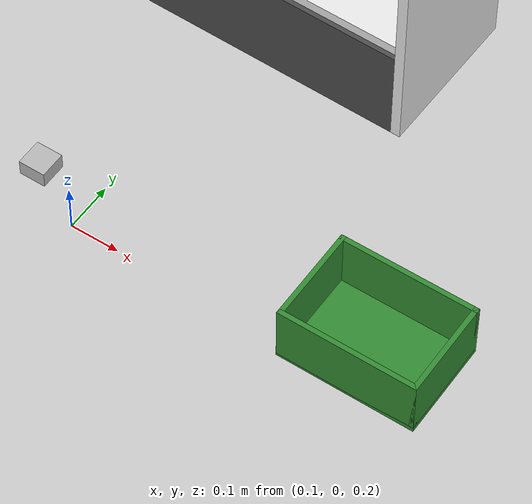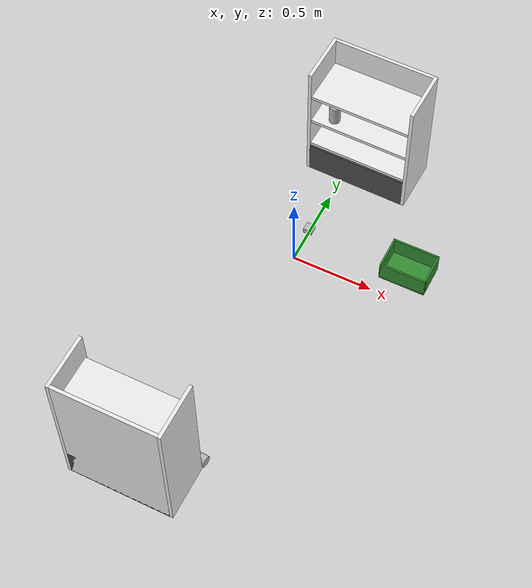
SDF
<sdf version="1.7">
 <world name="default">
  <plugin name="ros_link_attacher_plugin" filename="libgazebo_ros_link_attacher.so"/>
  <physics type="ode">
   <max_step_size>0.001</max_step_size>
   <real_time_factor>1</real_time_factor>
   <real_time_update_rate>1000</real_time_update_rate>
  </physics>
  <gravity>0 0 -9.8</gravity>
  <light name="sun" type="directional">
   <pose>0 0 10 0 -0 0</pose>
   <diffuse>0.8 0.8 0.8 1</diffuse>
   <specular>0.2 0.2 0.2 1</specular>
   <attenuation>
    <range>1000</range>
    <constant>0.9</constant>
    <linear>0.01</linear>
    <quadratic>0.001</quadratic>
   </attenuation>
   <direction>-0.5 0.1 -0.9</direction>
   <spot><inner_angle>0</inner_angle><outer_angle>0</outer_angle><falloff>0</falloff></spot>
  </light>
  <model name="ground_plane">
   <static>1</static>
   <link name="link">
    <collision name="collision">
     <geometry><plane><normal>0 0 1</normal><size>100 100</size></plane></geometry>
     <surface><friction><ode><mu>100</mu><mu2>50</mu2></ode></friction></surface>
    </collision>
    <visual name="visual">
     <cast_shadows>0</cast_shadows>
     <geometry><plane><normal>0 0 1</normal><size>100 100</size></plane></geometry>
     <material>
      <script><uri>file://media/materials/scripts/gazebo.material</uri><name>Gazebo/Grey</name></script>
     </material>
    </visual>
   </link>
  </model>
  <model name="depth_camera_model">
   <static>1</static>
   <pose>0.158364 -0.133043 0.555751 0 -0 1.57188</pose>
   <link name="depth_camera_link">
    <visual name="depth_camera_body"><geometry><box><size>0.05 0.05 0.03</size></box></geometry></visual>
    <sensor name="depth_camera" type="depth">
     <always_on>1</always_on>
     <update_rate>30</update_rate>
     <camera>
      <horizontal_fov>1.047</horizontal_fov>
      <image><width>640</width><height>480</height><format>R8G8B8</format></image>
      <clip><near>0.1</near><far>3</far></clip>
     </camera>
     <visualize>1</visualize>
     <plugin name="camera_controller" filename="libgazebo_ros_openni_kinect.so">
      <cameraName>depth_camera</cameraName>
      <alwaysOn>1</alwaysOn>
      <updateRate>30.0</updateRate>
      <imageTopicName>/camera/color/image_raw</imageTopicName>
      <cameraInfoTopicName>/camera/color/camera_info</cameraInfoTopicName>
      <depthImageTopicName>/camera/depth/image_raw</depthImageTopicName>
      <pointCloudTopicName>/camera/depth/points</pointCloudTopicName>
      <frameName>depth_camera_link</frameName>
     </plugin>
    </sensor>
   </link>
  </model>
  <scene><ambient>0.4 0.4 0.4 1</ambient><background>0.7 0.7 0.7 1</background><shadows>1</shadows></scene>
  <magnetic_field>6e-06 2.3e-05 -4.2e-05</magnetic_field>
  <atmosphere type="adiabatic"/>
  <spherical_coordinates>
   <surface_model>EARTH_WGS84</surface_model>
   <latitude_deg>0</latitude_deg>
   <longitude_deg>0</longitude_deg>
   <elevation>0</elevation>
   <heading_deg>0</heading_deg>
  </spherical_coordinates>
  <model name="narrow_supermarket_shelf_enclosed_1">
   <static>1</static>
   <link name="link">
    <collision name="base_collision">
     <pose>0 0 0.1 0 -0 0</pose>
     <geometry><box><size>0.32 0.6 0.2</size></box></geometry>
    </collision>
    <visual name="base_visual">
     <pose>0 0 0.1 0 -0 0</pose>
     <geometry><box><size>0.32 0.6 0.2</size></box></geometry>
     <material>
      <script><uri>file://media/materials/scripts/gazebo.material</uri><name>Gazebo/DarkGrey</name></script>
     </material>
    </visual>
    <collision name="backboard_collision">
     <pose>0.15 0 0.45 0 -0 0</pose>
     <geometry><box><size>0.02 0.6 0.9</size></box></geometry>
    </collision>
    <visual name="backboard_visual">
     <pose>0.15 0 0.45 0 -0 0</pose>
     <geometry><box><size>0.02 0.6 0.9</size></box></geometry>
     <material>
      <script><uri>file://media/materials/scripts/gazebo.material</uri><name>Gazebo/White</name></script>
     </material>
    </visual>
    <collision name="sidepanel_left_collision">
     <pose>0 0.31 0.45 0 -0 0</pose>
     <geometry><box><size>0.32 0.02 0.9</size></box></geometry>
    </collision>
    <visual name="sidepanel_left_visual">
     <pose>0 0.31 0.45 0 -0 0</pose>
     <geometry><box><size>0.32 0.02 0.9</size></box></geometry>
     <material>
      <script><uri>file://media/materials/scripts/gazebo.material</uri><name>Gazebo/White</name></script>
     </material>
    </visual>
    <collision name="sidepanel_right_collision">
     <pose>0 -0.31 0.45 0 -0 0</pose>
     <geometry><box><size>0.32 0.02 0.9</size></box></geometry>
    </collision>
    <visual name="sidepanel_right_visual">
     <pose>0 -0.31 0.45 0 -0 0</pose>
     <geometry><box><size>0.32 0.02 0.9</size></box></geometry>
     <material>
      <script><uri>file://media/materials/scripts/gazebo.material</uri><name>Gazebo/White</name></script>
     </material>
    </visual>
    <collision name="shelf_bottom_collision">
     <pose>0 0 0.21 0 -0 0</pose>
     <geometry><box><size>0.3 0.6 0.02</size></box></geometry>
    </collision>
    <visual name="shelf_bottom_visual">
     <pose>0 0 0.21 0 -0 0</pose>
     <geometry><box><size>0.3 0.6 0.02</size></box></geometry>
     <material>
      <script><uri>file://media/materials/scripts/gazebo.material</uri><name>Gazebo/White</name></script>
     </material>
    </visual>
    <collision name="shelf_middle_collision">
     <pose>0 0 0.46 0 -0 0</pose>
     <geometry><box><size>0.3 0.6 0.02</size></box></geometry>
    </collision>
    <visual name="shelf_middle_visual">
     <pose>0 0 0.46 0 -0 0</pose>
     <geometry><box><size>0.3 0.6 0.02</size></box></geometry>
     <material>
      <script><uri>file://media/materials/scripts/gazebo.material</uri><name>Gazebo/White</name></script>
     </material>
    </visual>
    <collision name="shelf_top_collision">
     <pose>0 0 0.71 0 -0 0</pose>
     <geometry><box><size>0.3 0.6 0.02</size></box></geometry>
    </collision>
    <visual name="shelf_top_visual">
     <pose>0 0 0.71 0 -0 0</pose>
     <geometry><box><size>0.3 0.6 0.02</size></box></geometry>
     <material>
      <script><uri>file://media/materials/scripts/gazebo.material</uri><name>Gazebo/White</name></script>
     </material>
    </visual>
   </link>
   <pose>-0.144011 -1.61152 0 0 0 -1.56622</pose>
  </model>
  <model name="narrow_supermarket_shelf_enclosed_0">
   <static>1</static>
   <link name="link">
    <collision name="base_collision">
     <pose>0 0 0.1 0 -0 0</pose>
     <geometry><box><size>0.32 0.6 0.2</size></box></geometry>
    </collision>
    <visual name="base_visual">
     <pose>0 0 0.1 0 -0 0</pose>
     <geometry><box><size>0.32 0.6 0.2</size></box></geometry>
     <material>
      <script><uri>file://media/materials/scripts/gazebo.material</uri><name>Gazebo/DarkGrey</name></script>
     </material>
    </visual>
    <collision name="backboard_collision">
     <pose>0.15 0 0.4 0 -0 0</pose>
     <geometry><box><size>0.02 0.6 0.8</size></box></geometry>
    </collision>
    <visual name="backboard_visual">
     <pose>0.15 0 0.4 0 -0 0</pose>
     <geometry><box><size>0.02 0.6 0.8</size></box></geometry>
     <material>
      <script><uri>file://media/materials/scripts/gazebo.material</uri><name>Gazebo/White</name></script>
     </material>
    </visual>
    <collision name="sidepanel_left_collision">
     <pose>0 0.31 0.4 0 -0 0</pose>
     <geometry><box><size>0.32 0.02 0.8</size></box></geometry>
    </collision>
    <visual name="sidepanel_left_visual">
     <pose>0 0.31 0.4 0 -0 0</pose>
     <geometry><box><size>0.32 0.02 0.8</size></box></geometry>
     <material>
      <script><uri>file://media/materials/scripts/gazebo.material</uri><name>Gazebo/White</name></script>
     </material>
    </visual>
    <collision name="sidepanel_right_collision">
     <pose>0 -0.31 0.4 0 -0 0</pose>
     <geometry><box><size>0.32 0.02 0.8</size></box></geometry>
    </collision>
    <visual name="sidepanel_right_visual">
     <pose>0 -0.31 0.4 0 -0 0</pose>
     <geometry><box><size>0.32 0.02 0.8</size></box></geometry>
     <material>
      <script><uri>file://media/materials/scripts/gazebo.material</uri><name>Gazebo/White</name></script>
     </material>
    </visual>
    <collision name="shelf_bottom_collision">
     <pose>0 0 0.21 0 -0 0</pose>
     <geometry><box><size>0.3 0.6 0.02</size></box></geometry>
    </collision>
    <visual name="shelf_bottom_visual">
     <pose>0 0 0.21 0 -0 0</pose>
     <geometry><box><size>0.3 0.6 0.02</size></box></geometry>
     <material>
      <script><uri>file://media/materials/scripts/gazebo.material</uri><name>Gazebo/White</name></script>
     </material>
    </visual>
    <collision name="shelf_middle_collision">
     <pose>0 0 0.41 0 -0 0</pose>
     <geometry><box><size>0.3 0.6 0.02</size></box></geometry>
    </collision>
    <visual name="shelf_middle_visual">
     <pose>0 0 0.41 0 -0 0</pose>
     <geometry><box><size>0.3 0.6 0.02</size></box></geometry>
     <material>
      <script><uri>file://media/materials/scripts/gazebo.material</uri><name>Gazebo/White</name></script>
     </material>
    </visual>
    <collision name="shelf_top_collision">
     <pose>0 0 0.61 0 -0 0</pose>
     <geometry><box><size>0.3 0.6 0.02</size></box></geometry>
    </collision>
    <visual name="shelf_top_visual">
     <pose>0 0 0.61 0 -0 0</pose>
     <geometry><box><size>0.3 0.6 0.02</size></box></geometry>
     <material>
      <script><uri>file://media/materials/scripts/gazebo.material</uri><name>Gazebo/White</name></script>
     </material>
    </visual>
   </link>
   <pose>0.154556 0.660653 0.205537 0 -0 1.54937</pose>
  </model>
  <model name="beer">
   <link name="link">
    <pose>0 0 0.0615 0 -0 0</pose>
    <inertial>
     <mass>0.35</mass>
     <inertia>
      <ixx>0.000536</ixx>
      <ixy>0</ixy>
      <ixz>0</ixz>
      <iyy>0.000536</iyy>
      <iyz>0</iyz>
      <izz>0.00019</izz>
     </inertia>
    </inertial>
    <collision name="collision">
     <geometry><cylinder><radius>0.033</radius><length>0.123</length></cylinder></geometry>
     <surface>
      <friction><ode><mu>100</mu><mu2>100</mu2><fdir1>0 0 0</fdir1><slip1>0</slip1><slip2>0</slip2></ode></friction>
      <contact><ode><kp>1e+06</kp><kd>1</kd><min_depth>0.001</min_depth><max_vel>0.1</max_vel></ode></contact>
     </surface>
    </collision>
    <visual name="visual">
     <geometry><cylinder><radius>0.033</radius><length>0.123</length></cylinder></geometry>
     <material>
      <script>
       <uri>model://Beer/materials/scripts</uri>
       <uri>model://Beer/materials/textures</uri>
       <name>Beer/Diffuse</name>
      </script>
     </material>
    </visual>
   </link>
   <pose>-312.598 2621.93 0.031998 1.5708 -0.251336 -1.44921</pose>
  </model>
  <model name="beer_1">
   <link name="link">
    <pose>0 0 0.0615 0 -0 0</pose>
    <inertial>
     <mass>0.35</mass>
     <inertia>
      <ixx>0.000536</ixx>
      <ixy>0</ixy>
      <ixz>0</ixz>
      <iyy>0.000536</iyy>
      <iyz>0</iyz>
      <izz>0.00019</izz>
     </inertia>
    </inertial>
    <collision name="collision">
     <geometry><cylinder><radius>0.033</radius><length>0.123</length></cylinder></geometry>
     <surface>
      <friction><ode><mu>100</mu><mu2>100</mu2><fdir1>0 0 0</fdir1><slip1>0</slip1><slip2>0</slip2></ode></friction>
      <contact><ode><kp>1e+06</kp><kd>1</kd><min_depth>0.001</min_depth><max_vel>0.1</max_vel></ode></contact>
     </surface>
    </collision>
    <visual name="visual">
     <geometry><cylinder><radius>0.033</radius><length>0.123</length></cylinder></geometry>
     <material>
      <script>
       <uri>model://Beer/materials/scripts</uri>
       <uri>model://Beer/materials/textures</uri>
       <name>Beer/Diffuse</name>
      </script>
     </material>
    </visual>
   </link>
   <pose>-1421.93 1027.9 0.031998 1.5708 1.09396 2.52451</pose>
  </model>
  <model name="beer_5">
   <link name="link">
    <pose>0 0 0.0615 0 -0 0</pose>
    <inertial>
     <mass>0.35</mass>
     <inertia>
      <ixx>0.000536</ixx>
      <ixy>0</ixy>
      <ixz>0</ixz>
      <iyy>0.000536</iyy>
      <iyz>0</iyz>
      <izz>0.00019</izz>
     </inertia>
    </inertial>
    <collision name="collision">
     <geometry><cylinder><radius>0.033</radius><length>0.123</length></cylinder></geometry>
     <surface>
      <friction><ode><mu>100</mu><mu2>100</mu2><fdir1>0 0 0</fdir1><slip1>0</slip1><slip2>0</slip2></ode></friction>
      <contact><ode><kp>1e+06</kp><kd>1</kd><min_depth>0.001</min_depth><max_vel>0.1</max_vel></ode></contact>
     </surface>
    </collision>
    <visual name="visual">
     <geometry><cylinder><radius>0.033</radius><length>0.123</length></cylinder></geometry>
     <material>
      <script>
       <uri>model://Beer/materials/scripts</uri>
       <uri>model://Beer/materials/textures</uri>
       <name>Beer/Diffuse</name>
      </script>
     </material>
    </visual>
   </link>
   <pose>-1605.53 -792.721 0.031998 -1.5708 -0.821368 -2.70363</pose>
  </model>
  <model name="beer_6">
   <link name="link">
    <pose>0 0 0.0615 0 -0 0</pose>
    <inertial>
     <mass>0.35</mass>
     <inertia>
      <ixx>0.000536</ixx>
      <ixy>0</ixy>
      <ixz>0</ixz>
      <iyy>0.000536</iyy>
      <iyz>0</iyz>
      <izz>0.00019</izz>
     </inertia>
    </inertial>
    <collision name="collision">
     <geometry><cylinder><radius>0.033</radius><length>0.123</length></cylinder></geometry>
     <surface>
      <friction><ode><mu>100</mu><mu2>100</mu2><fdir1>0 0 0</fdir1><slip1>0</slip1><slip2>0</slip2></ode></friction>
      <contact><ode><kp>1e+06</kp><kd>1</kd><min_depth>0.001</min_depth><max_vel>0.1</max_vel></ode></contact>
     </surface>
    </collision>
    <visual name="visual">
     <geometry><cylinder><radius>0.033</radius><length>0.123</length></cylinder></geometry>
     <material>
      <script>
       <uri>model://Beer/materials/scripts</uri>
       <uri>model://Beer/materials/textures</uri>
       <name>Beer/Diffuse</name>
      </script>
     </material>
    </visual>
   </link>
   <pose>0.185885 -1.41762 0.031998 -1.5708 1.51802 1.51465</pose>
  </model>
  <model name="beer_7">
   <link name="link">
    <pose>0 0 0.0615 0 -0 0</pose>
    <inertial>
     <mass>0.35</mass>
     <inertia>
      <ixx>0.000536</ixx>
      <ixy>0</ixy>
      <ixz>0</ixz>
      <iyy>0.000536</iyy>
      <iyz>0</iyz>
      <izz>0.00019</izz>
     </inertia>
    </inertial>
    <collision name="collision">
     <geometry><cylinder><radius>0.033</radius><length>0.123</length></cylinder></geometry>
     <surface>
      <friction><ode><mu>100</mu><mu2>100</mu2><fdir1>0 0 0</fdir1><slip1>0</slip1><slip2>0</slip2></ode></friction>
      <contact><ode><kp>1e+06</kp><kd>1</kd><min_depth>0.001</min_depth><max_vel>0.1</max_vel></ode></contact>
     </surface>
    </collision>
    <visual name="visual">
     <geometry><cylinder><radius>0.033</radius><length>0.123</length></cylinder></geometry>
     <material>
      <script>
       <uri>model://Beer/materials/scripts</uri>
       <uri>model://Beer/materials/textures</uri>
       <name>Beer/Diffuse</name>
      </script>
     </material>
    </visual>
   </link>
   <pose>-935.756 1456.86 0.031998 1.5708 -1.54929 -1.00129</pose>
  </model>
  <model name="beer_11">
   <link name="link">
    <pose>0 0 0.0615 0 -0 0</pose>
    <inertial>
     <mass>0.35</mass>
     <inertia>
      <ixx>0.000536</ixx>
      <ixy>0</ixy>
      <ixz>0</ixz>
      <iyy>0.000536</iyy>
      <iyz>0</iyz>
      <izz>0.00019</izz>
     </inertia>
    </inertial>
    <collision name="collision">
     <geometry><cylinder><radius>0.033</radius><length>0.123</length></cylinder></geometry>
     <surface>
      <friction><ode><mu>100</mu><mu2>100</mu2><fdir1>0 0 0</fdir1><slip1>0</slip1><slip2>0</slip2></ode></friction>
      <contact><ode><kp>1e+06</kp><kd>1</kd><min_depth>0.001</min_depth><max_vel>0.1</max_vel></ode></contact>
     </surface>
    </collision>
    <visual name="visual">
     <geometry><cylinder><radius>0.033</radius><length>0.123</length></cylinder></geometry>
     <material>
      <script>
       <uri>model://Beer/materials/scripts</uri>
       <uri>model://Beer/materials/textures</uri>
       <name>Beer/Diffuse</name>
      </script>
     </material>
    </visual>
   </link>
   <pose>-0.029656 0.578116 0.625103 1e-06 0.017172 -1.08697</pose>
  </model>
  <model name="grasp_basket">
   <static>1</static>
   <allow_auto_disable>0</allow_auto_disable>
   <link name="basket_link">
    <collision name="base_collision">
     <pose>0 0 0.005 0 -0 0</pose>
     <geometry><box><size>0.28 0.2 0.01</size></box></geometry>
     <surface>
      <friction><ode><mu>100</mu><mu2>100</mu2><slip1>0</slip1><slip2>0</slip2></ode></friction>
      <contact><ode><kp>2e+06</kp><kd>5</kd><min_depth>0.001</min_depth><max_vel>0.05</max_vel></ode></contact>
     </surface>
    </collision>
    <visual name="base_visual">
     <pose>0 0 0.005 0 -0 0</pose>
     <geometry><box><size>0.28 0.2 0.01</size></box></geometry>
     <material>
      <ambient>0.15 0.35 0.15 1</ambient>
      <diffuse>0.2 0.55 0.2 1</diffuse>
      <specular>0.05 0.05 0.05 1</specular>
     </material>
    </visual>
    <collision name="front_wall_collision">
     <pose>0 0.095 0.065 0 -0 0</pose>
     <geometry><box><size>0.28 0.01 0.12</size></box></geometry>
     <surface>
      <friction><ode><mu>100</mu><mu2>100</mu2></ode></friction>
      <contact><ode><kp>2e+06</kp><kd>5</kd><min_depth>0.001</min_depth><max_vel>0.05</max_vel></ode></contact>
     </surface>
    </collision>
    <visual name="front_wall_visual">
     <pose>0 0.095 0.065 0 -0 0</pose>
     <geometry><box><size>0.28 0.01 0.12</size></box></geometry>
     <material>
      <ambient>0.15 0.35 0.15 1</ambient>
      <diffuse>0.2 0.55 0.2 1</diffuse>
      <specular>0.05 0.05 0.05 1</specular>
     </material>
    </visual>
    <collision name="back_wall_collision">
     <pose>0 -0.095 0.065 0 -0 0</pose>
     <geometry><box><size>0.28 0.01 0.12</size></box></geometry>
     <surface>
      <friction><ode><mu>100</mu><mu2>100</mu2></ode></friction>
      <contact><ode><kp>2e+06</kp><kd>5</kd><min_depth>0.001</min_depth><max_vel>0.05</max_vel></ode></contact>
     </surface>
    </collision>
    <visual name="back_wall_visual">
     <pose>0 -0.095 0.065 0 -0 0</pose>
     <geometry><box><size>0.28 0.01 0.12</size></box></geometry>
     <material>
      <ambient>0.15 0.35 0.15 1</ambient>
      <diffuse>0.2 0.55 0.2 1</diffuse>
      <specular>0.05 0.05 0.05 1</specular>
     </material>
    </visual>
    <collision name="left_wall_collision">
     <pose>0.135 0 0.065 0 -0 0</pose>
     <geometry><box><size>0.01 0.2 0.12</size></box></geometry>
     <surface>
      <friction><ode><mu>100</mu><mu2>100</mu2></ode></friction>
      <contact><ode><kp>2e+06</kp><kd>5</kd><min_depth>0.001</min_depth><max_vel>0.05</max_vel></ode></contact>
     </surface>
    </collision>
    <visual name="left_wall_visual">
     <pose>0.135 0 0.065 0 -0 0</pose>
     <geometry><box><size>0.01 0.2 0.12</size></box></geometry>
     <material>
      <ambient>0.15 0.35 0.15 1</ambient>
      <diffuse>0.2 0.55 0.2 1</diffuse>
      <specular>0.05 0.05 0.05 1</specular>
     </material>
    </visual>
    <collision name="right_wall_collision">
     <pose>-0.135 0 0.065 0 -0 0</pose>
     <geometry><box><size>0.01 0.2 0.12</size></box></geometry>
     <surface>
      <friction><ode><mu>100</mu><mu2>100</mu2></ode></friction>
      <contact><ode><kp>2e+06</kp><kd>5</kd><min_depth>0.001</min_depth><max_vel>0.05</max_vel></ode></contact>
     </surface>
    </collision>
    <visual name="right_wall_visual">
     <pose>-0.135 0 0.065 0 -0 0</pose>
     <geometry><box><size>0.01 0.2 0.12</size></box></geometry>
     <material>
      <ambient>0.15 0.35 0.15 1</ambient>
      <diffuse>0.2 0.55 0.2 1</diffuse>
      <specular>0.05 0.05 0.05 1</specular>
     </material>
    </visual>
   </link>
   <pose>0.684512 0.087741 0.178502 0 -0 0</pose>
  </model>
 </world>
</sdf>
